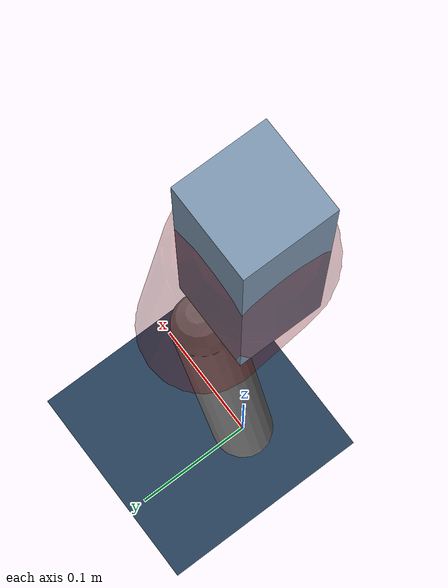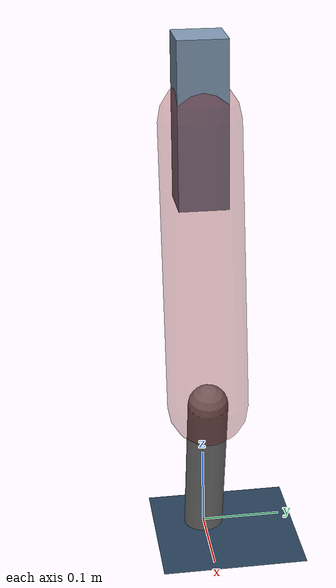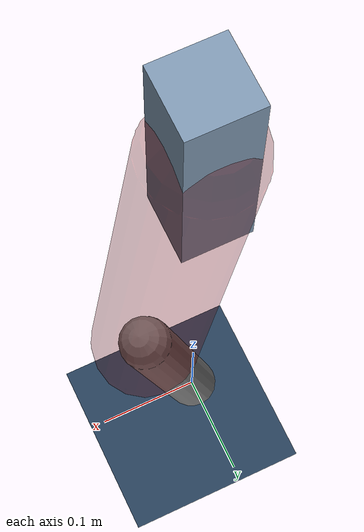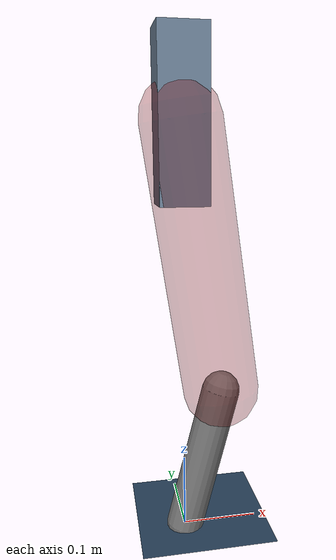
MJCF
<mujoco model="Hopper2D">
	<compiler inertiafromgeom="true" angle="radian" />
	<option timestep="0.001" integrator="implicit" cone="elliptic" solver="Newton" tolerance="1e-10" />

	<default>
		<geom contype="1" conaffinity="1" condim="3" friction="2 0.005 0.0001" solref="0.005 1" />
		<joint limited="true" damping="0.1" />
	</default>

	<asset>
		<texture name="skybox" type="skybox" builtin="gradient" rgb1=".4 .6 .8" rgb2="0 0 0" width="800" height="800" />
		<texture name="grid" type="2d" builtin="checker" rgb1=".1 .2 .3" rgb2=".2 .3 .4" width="300" height="300" mark="edge" markrgb=".2 .3 .4" />
		<material name="ground" texture="grid" texrepeat="1 1" texuniform="true" reflectance="0.1" />
		<material name="leg" rgba="0.5 0.6 0.7 1" />
	</asset>

	<worldbody>

		<geom name="floor" type="plane" size="5 5 0.25" material="ground" />

		<light directional="false" diffuse="0.8 0.8 0.8" specular="0.3 0.3 0.3" pos="0 0 2" dir="0 0 -1" />
		<light mode="targetbodycom" target="base" directional="false" diffuse="0.8 0.8 0.8" specular="0.3 0.3 0.3" pos="0 0 2" dir="0 0 -1" />

		<camera name="fixed" pos="0 -2 1" xyaxes="1 0 0 0 0 1" />
		<camera name="tracking" mode="trackcom" pos="0 -3 1" />

		<body name="root" pos="0 0 0.5400956169920117">
			<joint name="slide_x" type="slide" axis="1 0 0" range="-100 100" />
			<joint name="slide_z" type="slide" axis="0 0 1" range="0 10" />

			<body name="base" pos="0 0 0">
				<geom name="torso" type="box" size="0.03 0.03 0.1" mass="2.5570000000000004" material="leg" />

				<body name="link1" pos="0 0 0" euler="0 1.425511188898417 0">
					<joint type="hinge" axis="0 -1 0" pos="0 0 0" name="hinge1" limited="true" range="-3.14 3.14" stiffness="0" damping="0.1" />
					<geom name="thigh" type="capsule" fromto="0 0 0 0.3474139948721073 0 0" size="0.05" rgba="0.5 0 0 0.3" mass="1.1194591856419005" />

					<body name="link2" pos="0.3474139948721073 0 0" euler="0 0.3960616442132098 0">
						<joint type="hinge" axis="0 -1 0" pos="0 0 0" name="hinge2" limited="true" range="-3.14 3.14" stiffness="0" damping="0.1" />
						<geom name="shank" type="capsule" fromto="0 0 0 0.20268162211990443 0 0" size="0.025" mass="0.4031452976959235" />

					</body>
				</body>
			</body>
		</body>
	</worldbody>

	<actuator>
		<motor name="torque1" joint="hinge1" ctrlrange="-97.05975708778185 97.05975708778185" ctrllimited="true" gear="1" />
		<motor name="torque2" joint="hinge2" ctrlrange="-121.01038076316833 121.01038076316833" ctrllimited="true" gear="1" />
	</actuator>
</mujoco>
